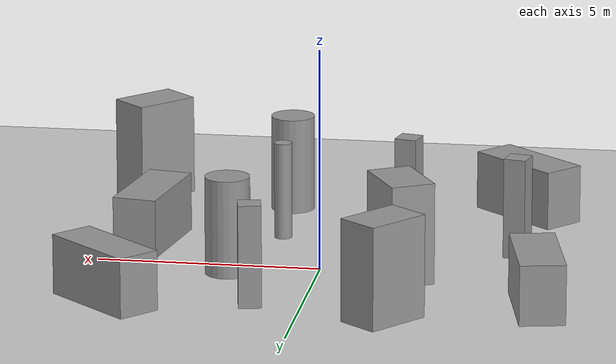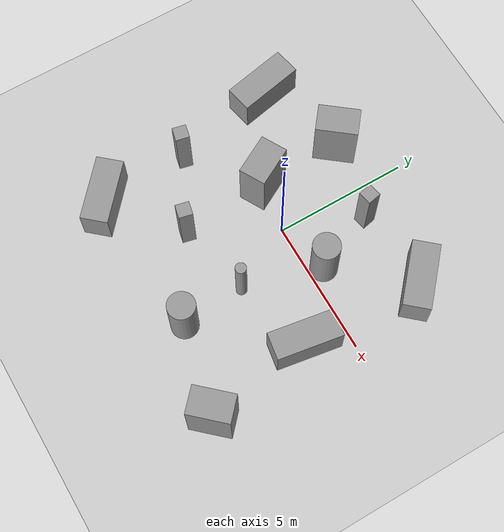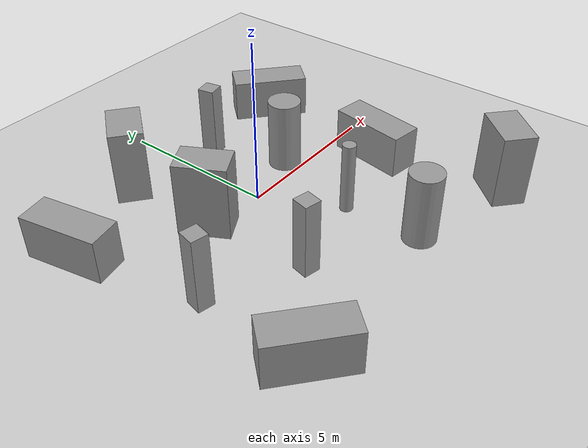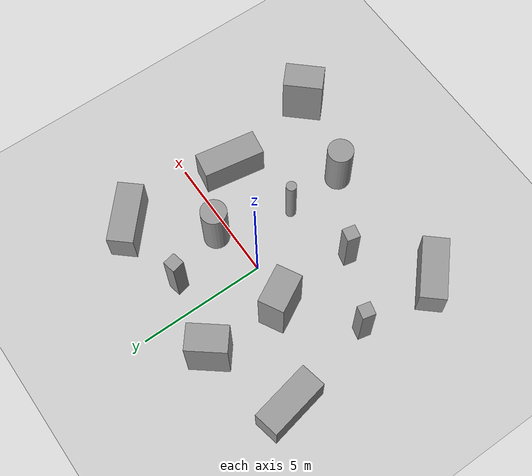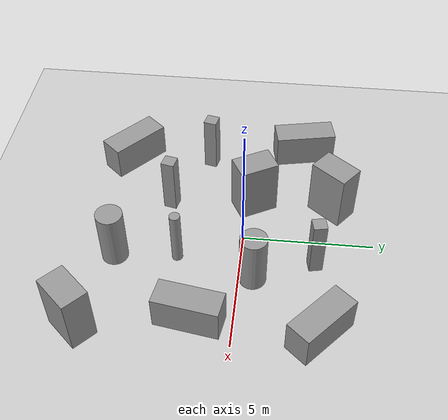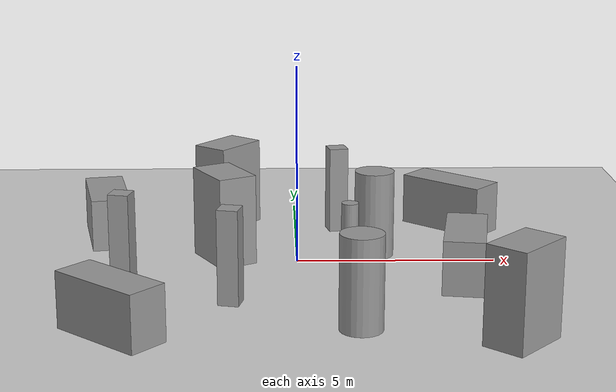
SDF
<sdf version="1.6">
 <world name="default">
  <light name="sun" type="directional">
   <pose>0 0 10 0 -0 0</pose>
   <diffuse>0.8 0.8 0.8 1</diffuse>
   <specular>0.2 0.2 0.2 1</specular>
   <attenuation>
    <range>1000</range>
    <constant>0.9</constant>
    <linear>0.01</linear>
    <quadratic>0.001</quadratic>
   </attenuation>
   <direction>-0.5 0.1 -0.9</direction>
  </light>
  <model name="ground_plane">
   <static>1</static>
   <link name="link">
    <collision name="collision">
     <geometry><plane><normal>0 0 1</normal><size>100 100</size></plane></geometry>
     <surface>
      <contact><collide_bitmask>65535</collide_bitmask></contact>
      <friction><ode><mu>100</mu><mu2>50</mu2></ode></friction>
     </surface>
    </collision>
    <visual name="visual">
     <cast_shadows>0</cast_shadows>
     <geometry><plane><normal>0 0 1</normal><size>100 100</size></plane></geometry>
     <material>
      <script><uri>file://media/materials/scripts/gazebo.material</uri><name>Gazebo/Grey</name></script>
     </material>
    </visual>
   </link>
  </model>
  <physics name="default_physics" default="0" type="ode">
   <ode>
    <solver>
     <type>quick</type>
     <iters>10</iters>
     <sor>1.3</sor>
     <use_dynamic_moi_rescaling>0</use_dynamic_moi_rescaling>
    </solver>
    <constraints>
     <cfm>0</cfm>
     <erp>0.2</erp>
     <contact_max_correcting_vel>100</contact_max_correcting_vel>
     <contact_surface_layer>0.001</contact_surface_layer>
    </constraints>
   </ode>
   <max_step_size>0.004</max_step_size>
   <real_time_factor>1</real_time_factor>
   <real_time_update_rate>250</real_time_update_rate>
  </physics>
  <gravity>0 0 -9.8066</gravity>
  <magnetic_field>6e-06 2.3e-05 -4.2e-05</magnetic_field>
  <atmosphere type="adiabatic"/>
  <scene><ambient>0.4 0.4 0.4 1</ambient><background>0.7 0.7 0.7 1</background><shadows>1</shadows></scene>
  <spherical_coordinates>
   <surface_model>EARTH_WGS84</surface_model>
   <latitude_deg>0</latitude_deg>
   <longitude_deg>0</longitude_deg>
   <elevation>0</elevation>
   <heading_deg>0</heading_deg>
  </spherical_coordinates>
  <model name="unit_box">
   <pose>-1.83363 0.283195 1.14507 -2.4e-05 3e-06 0.499485</pose>
   <link name="link">
    <inertial>
     <mass>1000</mass>
     <inertia><ixx>1000</ixx><ixy>0</ixy><ixz>0</ixz><iyy>1000</iyy><iyz>0</iyz><izz>1000</izz></inertia>
    </inertial>
    <collision name="collision"><geometry><box><size>1 1.5177 2.29013</size></box></geometry></collision>
    <visual name="visual">
     <geometry><box><size>1 1.5177 2.29013</size></box></geometry>
     <material>
      <script><name>Gazebo/Grey</name><uri>file://media/materials/scripts/gazebo.material</uri></script>
     </material>
    </visual>
   </link>
  </model>
  <model name="unit_box_clone">
   <pose>1.11401 2.78692 1.14507 3.5e-05 -3e-06 0.198781</pose>
   <link name="link">
    <inertial>
     <mass>1000</mass>
     <inertia><ixx>1000</ixx><ixy>0</ixy><ixz>0</ixz><iyy>1000</iyy><iyz>0</iyz><izz>1000</izz></inertia>
    </inertial>
    <collision name="collision"><geometry><box><size>0.501858 0.503969 2.29013</size></box></geometry></collision>
    <visual name="visual">
     <geometry><box><size>0.501858 0.503969 2.29013</size></box></geometry>
     <material>
      <script><name>Gazebo/Grey</name><uri>file://media/materials/scripts/gazebo.material</uri></script>
     </material>
    </visual>
   </link>
  </model>
  <model name="unit_cylinder">
   <pose>1.97874 0.534535 1.10846 2.7e-05 -2e-06 -0.000446</pose>
   <link name="link">
    <inertial>
     <mass>1000</mass>
     <inertia><ixx>1000</ixx><ixy>0</ixy><ixz>0</ixz><iyy>1000</iyy><iyz>0</iyz><izz>1000</izz></inertia>
    </inertial>
    <collision name="collision">
     <geometry><cylinder><radius>0.5</radius><length>2.21715</length></cylinder></geometry>
    </collision>
    <visual name="visual">
     <geometry><cylinder><radius>0.5</radius><length>2.21715</length></cylinder></geometry>
     <material>
      <script><name>Gazebo/Grey</name><uri>file://media/materials/scripts/gazebo.material</uri></script>
     </material>
    </visual>
   </link>
  </model>
  <model name="unit_cylinder_clone">
   <pose>1.19685 -2.36576 1.10847 -7.6e-05 3.3e-05 -0.069882</pose>
   <link name="link">
    <inertial>
     <mass>1000</mass>
     <inertia><ixx>1000</ixx><ixy>0</ixy><ixz>0</ixz><iyy>1000</iyy><iyz>0</iyz><izz>1000</izz></inertia>
    </inertial>
    <collision name="collision">
     <geometry><cylinder><radius>0.200447</radius><length>2.21715</length></cylinder></geometry>
    </collision>
    <visual name="visual">
     <geometry><cylinder><radius>0.200447</radius><length>2.21715</length></cylinder></geometry>
     <material>
      <script><name>Gazebo/Grey</name><uri>file://media/materials/scripts/gazebo.material</uri></script>
     </material>
    </visual>
   </link>
  </model>
  <model name="unit_box_0">
   <pose>4.04806 -1.51607 0.670596 2.6e-05 1e-05 1.40791</pose>
   <link name="link">
    <inertial>
     <mass>1000</mass>
     <inertia><ixx>1000</ixx><ixy>0</ixy><ixz>0</ixz><iyy>1000</iyy><iyz>0</iyz><izz>1000</izz></inertia>
    </inertial>
    <collision name="collision"><geometry><box><size>2.4039 1 1.34118</size></box></geometry></collision>
    <visual name="visual">
     <geometry><box><size>2.4039 1 1.34118</size></box></geometry>
     <material>
      <script><name>Gazebo/Grey</name><uri>file://media/materials/scripts/gazebo.material</uri></script>
     </material>
    </visual>
   </link>
  </model>
  <model name="unit_box_clone_clone">
   <pose>-1.5866 -2.99226 1.14506 -1.4e-05 2e-06 -0.222077</pose>
   <link name="link">
    <inertial>
     <mass>1000</mass>
     <inertia><ixx>1000</ixx><ixy>0</ixy><ixz>0</ixz><iyy>1000</iyy><iyz>0</iyz><izz>1000</izz></inertia>
    </inertial>
    <collision name="collision"><geometry><box><size>0.501858 0.503969 2.29013</size></box></geometry></collision>
    <visual name="visual">
     <geometry><box><size>0.501858 0.503969 2.29013</size></box></geometry>
     <material>
      <script><name>Gazebo/Grey</name><uri>file://media/materials/scripts/gazebo.material</uri></script>
     </material>
    </visual>
   </link>
  </model>
  <model name="unit_box_clone_0">
   <pose>-1.85444 3.36285 1.14507 2.4e-05 3e-06 -0.673852</pose>
   <link name="link">
    <inertial>
     <mass>1000</mass>
     <inertia><ixx>1000</ixx><ixy>0</ixy><ixz>0</ixz><iyy>1000</iyy><iyz>0</iyz><izz>1000</izz></inertia>
    </inertial>
    <collision name="collision"><geometry><box><size>1 1.5177 2.29013</size></box></geometry></collision>
    <visual name="visual">
     <geometry><box><size>1 1.5177 2.29013</size></box></geometry>
     <material>
      <script><name>Gazebo/Grey</name><uri>file://media/materials/scripts/gazebo.material</uri></script>
     </material>
    </visual>
   </link>
  </model>
  <model name="unit_box_clone_clone_clone">
   <pose>-4.20581 -1.66948 1.14506 4e-06 4e-06 -0.220571</pose>
   <link name="link">
    <inertial>
     <mass>1000</mass>
     <inertia><ixx>1000</ixx><ixy>0</ixy><ixz>0</ixz><iyy>1000</iyy><iyz>0</iyz><izz>1000</izz></inertia>
    </inertial>
    <collision name="collision"><geometry><box><size>0.501858 0.503969 2.29013</size></box></geometry></collision>
    <visual name="visual">
     <geometry><box><size>0.501858 0.503969 2.29013</size></box></geometry>
     <material>
      <script><name>Gazebo/Grey</name><uri>file://media/materials/scripts/gazebo.material</uri></script>
     </material>
    </visual>
   </link>
  </model>
  <model name="unit_cylinder_clone_0">
   <pose>1.33772 -4.72044 1.10846 2.7e-05 -2e-06 -0.000438</pose>
   <link name="link">
    <inertial>
     <mass>1000</mass>
     <inertia><ixx>1000</ixx><ixy>0</ixy><ixz>0</ixz><iyy>1000</iyy><iyz>0</iyz><izz>1000</izz></inertia>
    </inertial>
    <collision name="collision">
     <geometry><cylinder><radius>0.5</radius><length>2.21715</length></cylinder></geometry>
    </collision>
    <visual name="visual">
     <geometry><cylinder><radius>0.5</radius><length>2.21715</length></cylinder></geometry>
     <material>
      <script><name>Gazebo/Grey</name><uri>file://media/materials/scripts/gazebo.material</uri></script>
     </material>
    </visual>
   </link>
  </model>
  <model name="unit_box_0_clone">
   <pose>-5.0328 2.1456 0.670595 -1.5e-05 1.7e-05 1.77164</pose>
   <link name="link">
    <inertial>
     <mass>1000</mass>
     <inertia><ixx>1000</ixx><ixy>0</ixy><ixz>0</ixz><iyy>1000</iyy><iyz>0</iyz><izz>1000</izz></inertia>
    </inertial>
    <collision name="collision"><geometry><box><size>2.4039 1 1.34118</size></box></geometry></collision>
    <visual name="visual">
     <geometry><box><size>2.4039 1 1.34118</size></box></geometry>
     <material>
      <script><name>Gazebo/Grey</name><uri>file://media/materials/scripts/gazebo.material</uri></script>
     </material>
    </visual>
   </link>
  </model>
  <model name="unit_box_0_clone_0">
   <pose>4.23944 3.01981 0.670502 2e-06 6.1e-05 2.41686</pose>
   <link name="link">
    <inertial>
     <mass>1000</mass>
     <inertia><ixx>1000</ixx><ixy>0</ixy><ixz>0</ixz><iyy>1000</iyy><iyz>0</iyz><izz>1000</izz></inertia>
    </inertial>
    <collision name="collision"><geometry><box><size>2.4039 1 1.34118</size></box></geometry></collision>
    <visual name="visual">
     <geometry><box><size>2.4039 1 1.34118</size></box></geometry>
     <material>
      <script><name>Gazebo/Grey</name><uri>file://media/materials/scripts/gazebo.material</uri></script>
     </material>
    </visual>
   </link>
  </model>
  <model name="unit_box_0_clone_0_clone">
   <pose>-4.11561 -4.95715 0.670502 2e-06 6.1e-05 2.41685</pose>
   <link name="link">
    <inertial>
     <mass>1000</mass>
     <inertia><ixx>1000</ixx><ixy>0</ixy><ixz>0</ixz><iyy>1000</iyy><iyz>0</iyz><izz>1000</izz></inertia>
    </inertial>
    <collision name="collision"><geometry><box><size>2.4039 1 1.34118</size></box></geometry></collision>
    <visual name="visual">
     <geometry><box><size>2.4039 1 1.34118</size></box></geometry>
     <material>
      <script><name>Gazebo/Grey</name><uri>file://media/materials/scripts/gazebo.material</uri></script>
     </material>
    </visual>
   </link>
  </model>
  <model name="unit_box_clone_1">
   <pose>4.73032 -5.50002 1.14507 -1e-06 -2.1e-05 -0.744301</pose>
   <link name="link">
    <inertial>
     <mass>1000</mass>
     <inertia><ixx>1000</ixx><ixy>0</ixy><ixz>0</ixz><iyy>1000</iyy><iyz>0</iyz><izz>1000</izz></inertia>
    </inertial>
    <collision name="collision"><geometry><box><size>1 1.5177 2.29013</size></box></geometry></collision>
    <visual name="visual">
     <geometry><box><size>1 1.5177 2.29013</size></box></geometry>
     <material>
      <script><name>Gazebo/Grey</name><uri>file://media/materials/scripts/gazebo.material</uri></script>
     </material>
    </visual>
   </link>
  </model>
 </world>
</sdf>
